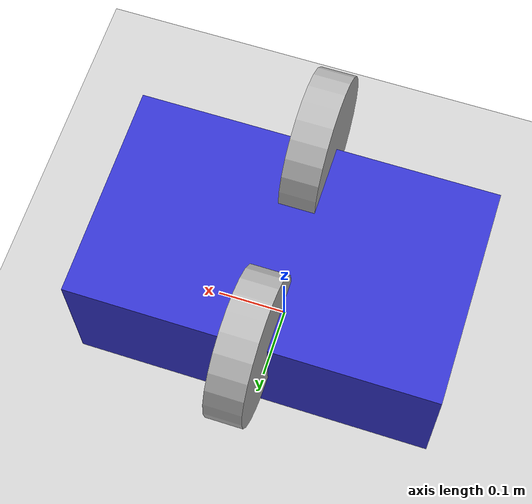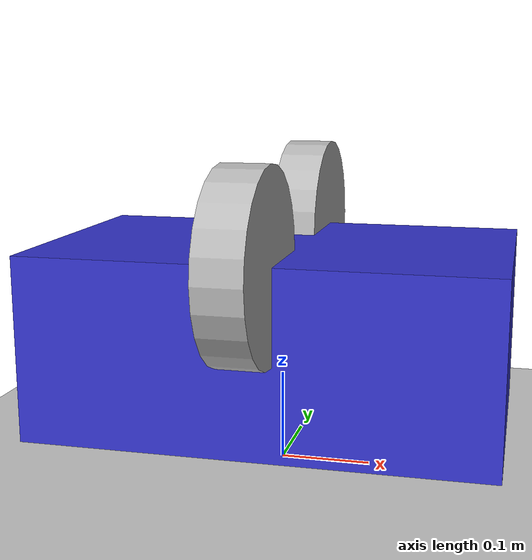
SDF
<?xml version="1.0" ?>
<sdf version="1.9">
  <world name="one_car_world">

    <!-- 光源 -->
    <light name="sun" type="directional">
      <direction>-0.5 0.5 -1</direction>
    </light>

    <!-- 地面 -->
    <model name="ground_plane">
      <static>true</static>
      <link name="link">
        <collision name="collision">
          <geometry>
            <plane>
              <normal>0 0 1</normal>
              <size>100 100</size>
            </plane>
          </geometry>
        </collision>
        <visual name="visual">
          <geometry>
            <plane>
              <normal>0 0 1</normal>
              <size>100 100</size>
            </plane>
          </geometry>
        </visual>
      </link>
    </model>
    <include>
      <uri>simple_car.sdf</uri>
    </include>
  </world>
</sdf>

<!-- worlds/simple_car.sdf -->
<sdf version="1.9">

  <model name="simple_car">
    <pose>0 0 0.15 0 0 0</pose>

    <!-- ================= 底盘 ================= -->
    <link name="base_link">
      <inertial>
        <mass>5.0</mass>
        <inertia>
          <ixx>0.2</ixx>
          <iyy>0.2</iyy>
          <izz>0.2</izz>
        </inertia>
      </inertial>

      <collision name="collision">
        <geometry>
          <box>
            <size>0.5 0.3 0.2</size>
          </box>
        </geometry>
      </collision>

      <visual name="visual">
        <geometry>
          <box>
            <size>0.5 0.3 0.2</size>
          </box>
        </geometry>
        <material>
          <ambient>0.2 0.2 0.8 1</ambient>
          <diffuse>0.2 0.2 0.8 1</diffuse>
          <specular>0.1 0.1 0.1 1</specular>
        </material>
      </visual>
    </link>

    <!-- ================= 左轮 ================= -->
    <link name="left_wheel">
      <pose>0 0.15 0.1 0 1.5708 0</pose>

      <inertial>
        <mass>0.5</mass>
        <inertia>
          <ixx>0.001</ixx>
          <iyy>0.001</iyy>
          <izz>0.001</izz>
        </inertia>
      </inertial>

      <collision name="collision">
        <geometry>
          <cylinder>
            <radius>0.1</radius>
            <length>0.05</length>
          </cylinder>
        </geometry>
        <surface>
          <friction>
            <ode>
              <mu>1.0</mu>
              <mu2>1.0</mu2>
            </ode>
          </friction>
        </surface>
      </collision>

      <visual name="visual">
        <geometry>
          <cylinder>
            <radius>0.1</radius>
            <length>0.05</length>
          </cylinder>
        </geometry>
      </visual>
    </link>

    <!-- ================= 右轮 ================= -->
    <link name="right_wheel">
      <pose>0 -0.15 0.1 0 1.5708 0</pose>

      <inertial>
        <mass>0.5</mass>
        <inertia>
          <ixx>0.001</ixx>
          <iyy>0.001</iyy>
          <izz>0.001</izz>
        </inertia>
      </inertial>

      <collision name="collision">
        <geometry>
          <cylinder>
            <radius>0.1</radius>
            <length>0.05</length>
          </cylinder>
        </geometry>
        <surface>
          <friction>
            <ode>
              <mu>1.0</mu>
              <mu2>1.0</mu2>
            </ode>
          </friction>
        </surface>
      </collision>

      <visual name="visual">
        <geometry>
          <cylinder>
            <radius>0.1</radius>
            <length>0.05</length>
          </cylinder>
        </geometry>
      </visual>
    </link>

    <!-- ================= 关节 ================= -->
    <joint name="left_wheel_joint" type="revolute">
      <parent>base_link</parent>
      <child>left_wheel</child>
      <axis>
        <xyz>0 1 0</xyz>
      </axis>
    </joint>

    <joint name="right_wheel_joint" type="revolute">
      <parent>base_link</parent>
      <child>right_wheel</child>
      <axis>
        <xyz>0 1 0</xyz>
      </axis>
    </joint>

    <!-- ================= 差速插件 ================= -->
    <plugin
      filename="libgz-sim-diff-drive-system.so"
      name="gz::sim::systems::DiffDrive">

      <left_joint>left_wheel_joint</left_joint>
      <right_joint>right_wheel_joint</right_joint>

      <wheel_separation>0.3</wheel_separation>
      <wheel_radius>0.1</wheel_radius>

      <topic>/cmd_vel</topic>
    </plugin>

  </model>

</sdf>
